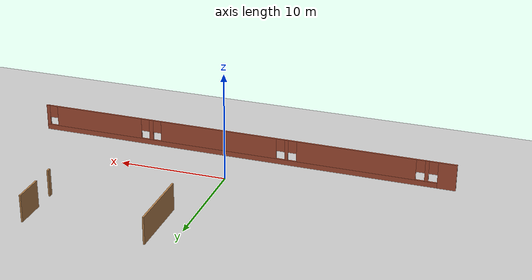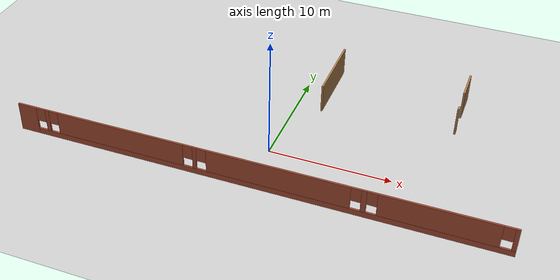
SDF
<sdf version="1.6">
 <world name="default">
  <model name="ground_plane">
   <static>1</static>
   <link name="link">
    <collision name="collision">
     <geometry><plane><normal>0 0 1</normal><size>100 100</size></plane></geometry>
     <surface>
      <contact><collide_bitmask>65535</collide_bitmask></contact>
      <friction><ode><mu>100</mu><mu2>50</mu2></ode></friction>
     </surface>
    </collision>
    <visual name="visual">
     <cast_shadows>0</cast_shadows>
     <geometry><plane><normal>0 0 1</normal><size>100 100</size></plane></geometry>
     <material>
      <script><uri>file://media/materials/scripts/gazebo.material</uri><name>Gazebo/Grey</name></script>
     </material>
    </visual>
   </link>
  </model>
  <model name="mybuilding">
   <link name="Wall_28">
    <pose>0.015532 -8.79244 0 0 -0 0</pose>
    <visual name="Wall_28_Visual_0">
     <pose>-19.0594 0 1.25 0 -0 0</pose>
     <geometry><box><size>1.65971 0.15 2.5</size></box></geometry>
     <material>
      <script><uri>file://media/materials/scripts/gazebo.material</uri><name>Gazebo/Bricks</name></script>
      <ambient>1 1 1 1</ambient>
      <shader type="pixel"/>
      <diffuse>1 1 1 1</diffuse>
      <specular>0.2 0.2 0.2 1</specular>
      <emissive>0 0 0 1</emissive>
     </material>
     <meta><layer>0</layer></meta>
    </visual>
    <visual name="Wall_28_Visual_1">
     <pose>0.829853 0 0.25 0 -0 0</pose>
     <geometry><box><size>38.1188 0.15 0.5</size></box></geometry>
     <material>
      <script><uri>file://media/materials/scripts/gazebo.material</uri><name>Gazebo/Bricks</name></script>
      <ambient>1 1 1 1</ambient>
      <shader type="pixel"/>
      <diffuse>1 1 1 1</diffuse>
      <specular>0.2 0.2 0.2 1</specular>
      <emissive>0 0 0 1</emissive>
     </material>
     <meta><layer>0</layer></meta>
    </visual>
    <visual name="Wall_28_Visual_2">
     <pose>-17.26 0 1.5 0 -0 0</pose>
     <geometry><box><size>0.339006 0.15 2</size></box></geometry>
     <material>
      <script><uri>file://media/materials/scripts/gazebo.material</uri><name>Gazebo/Bricks</name></script>
      <ambient>1 1 1 1</ambient>
      <shader type="pixel"/>
      <diffuse>1 1 1 1</diffuse>
      <specular>0.2 0.2 0.2 1</specular>
      <emissive>0 0 0 1</emissive>
     </material>
     <meta><layer>0</layer></meta>
    </visual>
    <visual name="Wall_28_Visual_3">
     <pose>-10.8105 0 1.5 0 -0 0</pose>
     <geometry><box><size>10.96 0.15 2</size></box></geometry>
     <material>
      <script><uri>file://media/materials/scripts/gazebo.material</uri><name>Gazebo/Bricks</name></script>
      <ambient>1 1 1 1</ambient>
      <shader type="pixel"/>
      <diffuse>1 1 1 1</diffuse>
      <specular>0.2 0.2 0.2 1</specular>
      <emissive>0 0 0 1</emissive>
     </material>
     <meta><layer>0</layer></meta>
    </visual>
    <visual name="Wall_28_Visual_4">
     <pose>-4.37053 0 1.5 0 -0 0</pose>
     <geometry><box><size>0.32 0.15 2</size></box></geometry>
     <material>
      <script><uri>file://media/materials/scripts/gazebo.material</uri><name>Gazebo/Bricks</name></script>
      <ambient>1 1 1 1</ambient>
      <shader type="pixel"/>
      <diffuse>1 1 1 1</diffuse>
      <specular>0.2 0.2 0.2 1</specular>
      <emissive>0 0 0 1</emissive>
     </material>
     <meta><layer>0</layer></meta>
    </visual>
    <visual name="Wall_28_Visual_5">
     <pose>2.26947 0 1.5 0 -0 0</pose>
     <geometry><box><size>11.36 0.15 2</size></box></geometry>
     <material>
      <script><uri>file://media/materials/scripts/gazebo.material</uri><name>Gazebo/Bricks</name></script>
      <ambient>1 1 1 1</ambient>
      <shader type="pixel"/>
      <diffuse>1 1 1 1</diffuse>
      <specular>0.2 0.2 0.2 1</specular>
      <emissive>0 0 0 1</emissive>
     </material>
     <meta><layer>0</layer></meta>
    </visual>
    <visual name="Wall_28_Visual_6">
     <pose>8.94947 0 1.5 0 -0 0</pose>
     <geometry><box><size>0.4 0.15 2</size></box></geometry>
     <material>
      <script><uri>file://media/materials/scripts/gazebo.material</uri><name>Gazebo/Bricks</name></script>
      <ambient>1 1 1 1</ambient>
      <shader type="pixel"/>
      <diffuse>1 1 1 1</diffuse>
      <specular>0.2 0.2 0.2 1</specular>
      <emissive>0 0 0 1</emissive>
     </material>
     <meta><layer>0</layer></meta>
    </visual>
    <visual name="Wall_28_Visual_7">
     <pose>14.3495 0 1.5 0 -0 0</pose>
     <geometry><box><size>8.8 0.15 2</size></box></geometry>
     <material>
      <script><uri>file://media/materials/scripts/gazebo.material</uri><name>Gazebo/Bricks</name></script>
      <ambient>1 1 1 1</ambient>
      <shader type="pixel"/>
      <diffuse>1 1 1 1</diffuse>
      <specular>0.2 0.2 0.2 1</specular>
      <emissive>0 0 0 1</emissive>
     </material>
     <meta><layer>0</layer></meta>
    </visual>
    <visual name="Wall_28_Visual_8">
     <pose>19.7194 0 1.5 0 -0 0</pose>
     <geometry><box><size>0.339765 0.15 2</size></box></geometry>
     <material>
      <script><uri>file://media/materials/scripts/gazebo.material</uri><name>Gazebo/Bricks</name></script>
      <ambient>1 1 1 1</ambient>
      <shader type="pixel"/>
      <diffuse>1 1 1 1</diffuse>
      <specular>0.2 0.2 0.2 1</specular>
      <emissive>0 0 0 1</emissive>
     </material>
     <meta><layer>0</layer></meta>
    </visual>
    <visual name="Wall_28_Visual_9">
     <pose>-17.8295 0 1.9 0 -0 0</pose>
     <geometry><box><size>0.8 0.15 1.2</size></box></geometry>
     <material>
      <script><uri>file://media/materials/scripts/gazebo.material</uri><name>Gazebo/Bricks</name></script>
      <ambient>1 1 1 1</ambient>
      <shader type="pixel"/>
      <diffuse>1 1 1 1</diffuse>
      <specular>0.2 0.2 0.2 1</specular>
      <emissive>0 0 0 1</emissive>
     </material>
     <meta><layer>0</layer></meta>
    </visual>
    <visual name="Wall_28_Visual_10">
     <pose>-16.6905 0 1.9 0 -0 0</pose>
     <geometry><box><size>0.8 0.15 1.2</size></box></geometry>
     <material>
      <script><uri>file://media/materials/scripts/gazebo.material</uri><name>Gazebo/Bricks</name></script>
      <ambient>1 1 1 1</ambient>
      <shader type="pixel"/>
      <diffuse>1 1 1 1</diffuse>
      <specular>0.2 0.2 0.2 1</specular>
      <emissive>0 0 0 1</emissive>
     </material>
     <meta><layer>0</layer></meta>
    </visual>
    <visual name="Wall_28_Visual_11">
     <pose>-4.93053 0 1.9 0 -0 0</pose>
     <geometry><box><size>0.8 0.15 1.2</size></box></geometry>
     <material>
      <script><uri>file://media/materials/scripts/gazebo.material</uri><name>Gazebo/Bricks</name></script>
      <ambient>1 1 1 1</ambient>
      <shader type="pixel"/>
      <diffuse>1 1 1 1</diffuse>
      <specular>0.2 0.2 0.2 1</specular>
      <emissive>0 0 0 1</emissive>
     </material>
     <meta><layer>0</layer></meta>
    </visual>
    <visual name="Wall_28_Visual_12">
     <pose>-3.81053 0 1.9 0 -0 0</pose>
     <geometry><box><size>0.8 0.15 1.2</size></box></geometry>
     <material>
      <script><uri>file://media/materials/scripts/gazebo.material</uri><name>Gazebo/Bricks</name></script>
      <ambient>1 1 1 1</ambient>
      <shader type="pixel"/>
      <diffuse>1 1 1 1</diffuse>
      <specular>0.2 0.2 0.2 1</specular>
      <emissive>0 0 0 1</emissive>
     </material>
     <meta><layer>0</layer></meta>
    </visual>
    <visual name="Wall_28_Visual_13">
     <pose>8.34947 0 1.9 0 -0 0</pose>
     <geometry><box><size>0.8 0.15 1.2</size></box></geometry>
     <material>
      <script><uri>file://media/materials/scripts/gazebo.material</uri><name>Gazebo/Bricks</name></script>
      <ambient>1 1 1 1</ambient>
      <shader type="pixel"/>
      <diffuse>1 1 1 1</diffuse>
      <specular>0.2 0.2 0.2 1</specular>
      <emissive>0 0 0 1</emissive>
     </material>
     <meta><layer>0</layer></meta>
    </visual>
    <visual name="Wall_28_Visual_14">
     <pose>9.54947 0 1.9 0 -0 0</pose>
     <geometry><box><size>0.8 0.15 1.2</size></box></geometry>
     <material>
      <script><uri>file://media/materials/scripts/gazebo.material</uri><name>Gazebo/Bricks</name></script>
      <ambient>1 1 1 1</ambient>
      <shader type="pixel"/>
      <diffuse>1 1 1 1</diffuse>
      <specular>0.2 0.2 0.2 1</specular>
      <emissive>0 0 0 1</emissive>
     </material>
     <meta><layer>0</layer></meta>
    </visual>
    <visual name="Wall_28_Visual_15">
     <pose>19.1495 0 1.9 0 -0 0</pose>
     <geometry><box><size>0.8 0.15 1.2</size></box></geometry>
     <material>
      <script><uri>file://media/materials/scripts/gazebo.material</uri><name>Gazebo/Bricks</name></script>
      <ambient>1 1 1 1</ambient>
      <shader type="pixel"/>
      <diffuse>1 1 1 1</diffuse>
      <specular>0.2 0.2 0.2 1</specular>
      <emissive>0 0 0 1</emissive>
     </material>
     <meta><layer>0</layer></meta>
    </visual>
    <collision name="Wall_28_Collision_0">
     <pose>-19.0594 0 1.25 0 -0 0</pose>
     <geometry><box><size>1.65971 0.15 2.5</size></box></geometry>
     <surface>
      <friction>
       <ode><mu>1</mu><mu2>1</mu2><fdir1>0 0 0</fdir1><slip1>0</slip1><slip2>0</slip2></ode>
       <torsional>
        <coefficient>1</coefficient>
        <patch_radius>0</patch_radius>
        <surface_radius>0</surface_radius>
        <use_patch_radius>1</use_patch_radius>
        <ode><slip>0</slip></ode>
       </torsional>
      </friction>
      <bounce><restitution_coefficient>0</restitution_coefficient><threshold>1e+06</threshold></bounce>
      <contact>
       <collide_without_contact>0</collide_without_contact>
       <collide_without_contact_bitmask>1</collide_without_contact_bitmask>
       <collide_bitmask>1</collide_bitmask>
       <ode>
        <soft_cfm>0</soft_cfm>
        <soft_erp>0.2</soft_erp>
        <kp>1e+13</kp>
        <kd>1</kd>
        <max_vel>0.01</max_vel>
        <min_depth>0</min_depth>
       </ode>
       <bullet>
        <split_impulse>1</split_impulse>
        <split_impulse_penetration_threshold>-0.01</split_impulse_penetration_threshold>
        <soft_cfm>0</soft_cfm>
        <soft_erp>0.2</soft_erp>
        <kp>1e+13</kp>
        <kd>1</kd>
       </bullet>
      </contact>
     </surface>
    </collision>
    <collision name="Wall_28_Collision_1">
     <pose>0.829853 0 0.25 0 -0 0</pose>
     <geometry><box><size>38.1188 0.15 0.5</size></box></geometry>
     <surface>
      <friction>
       <ode><mu>1</mu><mu2>1</mu2><fdir1>0 0 0</fdir1><slip1>0</slip1><slip2>0</slip2></ode>
       <torsional>
        <coefficient>1</coefficient>
        <patch_radius>0</patch_radius>
        <surface_radius>0</surface_radius>
        <use_patch_radius>1</use_patch_radius>
        <ode><slip>0</slip></ode>
       </torsional>
      </friction>
      <bounce><restitution_coefficient>0</restitution_coefficient><threshold>1e+06</threshold></bounce>
      <contact>
       <collide_without_contact>0</collide_without_contact>
       <collide_without_contact_bitmask>1</collide_without_contact_bitmask>
       <collide_bitmask>1</collide_bitmask>
       <ode>
        <soft_cfm>0</soft_cfm>
        <soft_erp>0.2</soft_erp>
        <kp>1e+13</kp>
        <kd>1</kd>
        <max_vel>0.01</max_vel>
        <min_depth>0</min_depth>
       </ode>
       <bullet>
        <split_impulse>1</split_impulse>
        <split_impulse_penetration_threshold>-0.01</split_impulse_penetration_threshold>
        <soft_cfm>0</soft_cfm>
        <soft_erp>0.2</soft_erp>
        <kp>1e+13</kp>
        <kd>1</kd>
       </bullet>
      </contact>
     </surface>
    </collision>
    <collision name="Wall_28_Collision_2">
     <pose>-17.26 0 1.5 0 -0 0</pose>
     <geometry><box><size>0.339006 0.15 2</size></box></geometry>
     <surface>
      <friction>
       <ode><mu>1</mu><mu2>1</mu2><fdir1>0 0 0</fdir1><slip1>0</slip1><slip2>0</slip2></ode>
       <torsional>
        <coefficient>1</coefficient>
        <patch_radius>0</patch_radius>
        <surface_radius>0</surface_radius>
        <use_patch_radius>1</use_patch_radius>
        <ode><slip>0</slip></ode>
       </torsional>
      </friction>
      <bounce><restitution_coefficient>0</restitution_coefficient><threshold>1e+06</threshold></bounce>
      <contact>
       <collide_without_contact>0</collide_without_contact>
       <collide_without_contact_bitmask>1</collide_without_contact_bitmask>
       <collide_bitmask>1</collide_bitmask>
       <ode>
        <soft_cfm>0</soft_cfm>
        <soft_erp>0.2</soft_erp>
        <kp>1e+13</kp>
        <kd>1</kd>
        <max_vel>0.01</max_vel>
        <min_depth>0</min_depth>
       </ode>
       <bullet>
        <split_impulse>1</split_impulse>
        <split_impulse_penetration_threshold>-0.01</split_impulse_penetration_threshold>
        <soft_cfm>0</soft_cfm>
        <soft_erp>0.2</soft_erp>
        <kp>1e+13</kp>
        <kd>1</kd>
       </bullet>
      </contact>
     </surface>
    </collision>
    <collision name="Wall_28_Collision_3">
     <pose>-10.8105 0 1.5 0 -0 0</pose>
     <geometry><box><size>10.96 0.15 2</size></box></geometry>
     <surface>
      <friction>
       <ode><mu>1</mu><mu2>1</mu2><fdir1>0 0 0</fdir1><slip1>0</slip1><slip2>0</slip2></ode>
       <torsional>
        <coefficient>1</coefficient>
        <patch_radius>0</patch_radius>
        <surface_radius>0</surface_radius>
        <use_patch_radius>1</use_patch_radius>
        <ode><slip>0</slip></ode>
       </torsional>
      </friction>
      <bounce><restitution_coefficient>0</restitution_coefficient><threshold>1e+06</threshold></bounce>
      <contact>
       <collide_without_contact>0</collide_without_contact>
       <collide_without_contact_bitmask>1</collide_without_contact_bitmask>
       <collide_bitmask>1</collide_bitmask>
       <ode>
        <soft_cfm>0</soft_cfm>
        <soft_erp>0.2</soft_erp>
        <kp>1e+13</kp>
        <kd>1</kd>
        <max_vel>0.01</max_vel>
        <min_depth>0</min_depth>
       </ode>
       <bullet>
        <split_impulse>1</split_impulse>
        <split_impulse_penetration_threshold>-0.01</split_impulse_penetration_threshold>
        <soft_cfm>0</soft_cfm>
        <soft_erp>0.2</soft_erp>
        <kp>1e+13</kp>
        <kd>1</kd>
       </bullet>
      </contact>
     </surface>
    </collision>
    <collision name="Wall_28_Collision_4">
     <pose>-4.37053 0 1.5 0 -0 0</pose>
     <geometry><box><size>0.32 0.15 2</size></box></geometry>
     <surface>
      <friction>
       <ode><mu>1</mu><mu2>1</mu2><fdir1>0 0 0</fdir1><slip1>0</slip1><slip2>0</slip2></ode>
       <torsional>
        <coefficient>1</coefficient>
        <patch_radius>0</patch_radius>
        <surface_radius>0</surface_radius>
        <use_patch_radius>1</use_patch_radius>
        <ode><slip>0</slip></ode>
       </torsional>
      </friction>
      <bounce><restitution_coefficient>0</restitution_coefficient><threshold>1e+06</threshold></bounce>
      <contact>
       <collide_without_contact>0</collide_without_contact>
       <collide_without_contact_bitmask>1</collide_without_contact_bitmask>
       <collide_bitmask>1</collide_bitmask>
       <ode>
        <soft_cfm>0</soft_cfm>
        <soft_erp>0.2</soft_erp>
        <kp>1e+13</kp>
        <kd>1</kd>
        <max_vel>0.01</max_vel>
        <min_depth>0</min_depth>
       </ode>
       <bullet>
        <split_impulse>1</split_impulse>
        <split_impulse_penetration_threshold>-0.01</split_impulse_penetration_threshold>
        <soft_cfm>0</soft_cfm>
        <soft_erp>0.2</soft_erp>
        <kp>1e+13</kp>
        <kd>1</kd>
       </bullet>
      </contact>
     </surface>
    </collision>
    <collision name="Wall_28_Collision_5">
     <pose>2.26947 0 1.5 0 -0 0</pose>
     <geometry><box><size>11.36 0.15 2</size></box></geometry>
     <surface>
      <friction>
       <ode><mu>1</mu><mu2>1</mu2><fdir1>0 0 0</fdir1><slip1>0</slip1><slip2>0</slip2></ode>
       <torsional>
        <coefficient>1</coefficient>
        <patch_radius>0</patch_radius>
        <surface_radius>0</surface_radius>
        <use_patch_radius>1</use_patch_radius>
        <ode><slip>0</slip></ode>
       </torsional>
      </friction>
      <bounce><restitution_coefficient>0</restitution_coefficient><threshold>1e+06</threshold></bounce>
      <contact>
       <collide_without_contact>0</collide_without_contact>
       <collide_without_contact_bitmask>1</collide_without_contact_bitmask>
       <collide_bitmask>1</collide_bitmask>
       <ode>
        <soft_cfm>0</soft_cfm>
        <soft_erp>0.2</soft_erp>
        <kp>1e+13</kp>
        <kd>1</kd>
        <max_vel>0.01</max_vel>
        <min_depth>0</min_depth>
       </ode>
       <bullet>
        <split_impulse>1</split_impulse>
        <split_impulse_penetration_threshold>-0.01</split_impulse_penetration_threshold>
        <soft_cfm>0</soft_cfm>
        <soft_erp>0.2</soft_erp>
        <kp>1e+13</kp>
        <kd>1</kd>
       </bullet>
      </contact>
     </surface>
    </collision>
    <collision name="Wall_28_Collision_6">
     <pose>8.94947 0 1.5 0 -0 0</pose>
     <geometry><box><size>0.4 0.15 2</size></box></geometry>
     <surface>
      <friction>
       <ode><mu>1</mu><mu2>1</mu2><fdir1>0 0 0</fdir1><slip1>0</slip1><slip2>0</slip2></ode>
       <torsional>
        <coefficient>1</coefficient>
        <patch_radius>0</patch_radius>
        <surface_radius>0</surface_radius>
        <use_patch_radius>1</use_patch_radius>
        <ode><slip>0</slip></ode>
       </torsional>
      </friction>
      <bounce><restitution_coefficient>0</restitution_coefficient><threshold>1e+06</threshold></bounce>
      <contact>
       <collide_without_contact>0</collide_without_contact>
       <collide_without_contact_bitmask>1</collide_without_contact_bitmask>
       <collide_bitmask>1</collide_bitmask>
       <ode>
        <soft_cfm>0</soft_cfm>
        <soft_erp>0.2</soft_erp>
        <kp>1e+13</kp>
        <kd>1</kd>
        <max_vel>0.01</max_vel>
        <min_depth>0</min_depth>
       </ode>
       <bullet>
        <split_impulse>1</split_impulse>
        <split_impulse_penetration_threshold>-0.01</split_impulse_penetration_threshold>
        <soft_cfm>0</soft_cfm>
        <soft_erp>0.2</soft_erp>
        <kp>1e+13</kp>
        <kd>1</kd>
       </bullet>
      </contact>
     </surface>
    </collision>
    <collision name="Wall_28_Collision_7">
     <pose>14.3495 0 1.5 0 -0 0</pose>
     <geometry><box><size>8.8 0.15 2</size></box></geometry>
     <surface>
      <friction>
       <ode><mu>1</mu><mu2>1</mu2><fdir1>0 0 0</fdir1><slip1>0</slip1><slip2>0</slip2></ode>
       <torsional>
        <coefficient>1</coefficient>
        <patch_radius>0</patch_radius>
        <surface_radius>0</surface_radius>
        <use_patch_radius>1</use_patch_radius>
        <ode><slip>0</slip></ode>
       </torsional>
      </friction>
      <bounce><restitution_coefficient>0</restitution_coefficient><threshold>1e+06</threshold></bounce>
      <contact>
       <collide_without_contact>0</collide_without_contact>
       <collide_without_contact_bitmask>1</collide_without_contact_bitmask>
       <collide_bitmask>1</collide_bitmask>
       <ode>
        <soft_cfm>0</soft_cfm>
        <soft_erp>0.2</soft_erp>
        <kp>1e+13</kp>
        <kd>1</kd>
        <max_vel>0.01</max_vel>
        <min_depth>0</min_depth>
       </ode>
       <bullet>
        <split_impulse>1</split_impulse>
        <split_impulse_penetration_threshold>-0.01</split_impulse_penetration_threshold>
        <soft_cfm>0</soft_cfm>
        <soft_erp>0.2</soft_erp>
        <kp>1e+13</kp>
        <kd>1</kd>
       </bullet>
      </contact>
     </surface>
    </collision>
    <collision name="Wall_28_Collision_8">
     <pose>19.7194 0 1.5 0 -0 0</pose>
     <geometry><box><size>0.339765 0.15 2</size></box></geometry>
     <surface>
      <friction>
       <ode><mu>1</mu><mu2>1</mu2><fdir1>0 0 0</fdir1><slip1>0</slip1><slip2>0</slip2></ode>
       <torsional>
        <coefficient>1</coefficient>
        <patch_radius>0</patch_radius>
        <surface_radius>0</surface_radius>
        <use_patch_radius>1</use_patch_radius>
        <ode><slip>0</slip></ode>
       </torsional>
      </friction>
      <bounce><restitution_coefficient>0</restitution_coefficient><threshold>1e+06</threshold></bounce>
      <contact>
       <collide_without_contact>0</collide_without_contact>
       <collide_without_contact_bitmask>1</collide_without_contact_bitmask>
       <collide_bitmask>1</collide_bitmask>
       <ode>
        <soft_cfm>0</soft_cfm>
        <soft_erp>0.2</soft_erp>
        <kp>1e+13</kp>
        <kd>1</kd>
        <max_vel>0.01</max_vel>
        <min_depth>0</min_depth>
       </ode>
       <bullet>
        <split_impulse>1</split_impulse>
        <split_impulse_penetration_threshold>-0.01</split_impulse_penetration_threshold>
        <soft_cfm>0</soft_cfm>
        <soft_erp>0.2</soft_erp>
        <kp>1e+13</kp>
        <kd>1</kd>
       </bullet>
      </contact>
     </surface>
    </collision>
    <collision name="Wall_28_Collision_9">
     <pose>-17.8295 0 1.9 0 -0 0</pose>
     <geometry><box><size>0.8 0.15 1.2</size></box></geometry>
     <surface>
      <friction>
       <ode><mu>1</mu><mu2>1</mu2><fdir1>0 0 0</fdir1><slip1>0</slip1><slip2>0</slip2></ode>
       <torsional>
        <coefficient>1</coefficient>
        <patch_radius>0</patch_radius>
        <surface_radius>0</surface_radius>
        <use_patch_radius>1</use_patch_radius>
        <ode><slip>0</slip></ode>
       </torsional>
      </friction>
      <bounce><restitution_coefficient>0</restitution_coefficient><threshold>1e+06</threshold></bounce>
      <contact>
       <collide_without_contact>0</collide_without_contact>
       <collide_without_contact_bitmask>1</collide_without_contact_bitmask>
       <collide_bitmask>1</collide_bitmask>
       <ode>
        <soft_cfm>0</soft_cfm>
        <soft_erp>0.2</soft_erp>
        <kp>1e+13</kp>
        <kd>1</kd>
        <max_vel>0.01</max_vel>
        <min_depth>0</min_depth>
       </ode>
       <bullet>
        <split_impulse>1</split_impulse>
        <split_impulse_penetration_threshold>-0.01</split_impulse_penetration_threshold>
        <soft_cfm>0</soft_cfm>
        <soft_erp>0.2</soft_erp>
        <kp>1e+13</kp>
        <kd>1</kd>
       </bullet>
      </contact>
     </surface>
    </collision>
    <collision name="Wall_28_Collision_11">
     <pose>-4.93053 0 1.9 0 -0 0</pose>
     <geometry><box><size>0.8 0.15 1.2</size></box></geometry>
     <surface>
      <friction>
       <ode><mu>1</mu><mu2>1</mu2><fdir1>0 0 0</fdir1><slip1>0</slip1><slip2>0</slip2></ode>
       <torsional>
        <coefficient>1</coefficient>
        <patch_radius>0</patch_radius>
        <surface_radius>0</surface_radius>
        <use_patch_radius>1</use_patch_radius>
        <ode><slip>0</slip></ode>
       </torsional>
      </friction>
      <bounce><restitution_coefficient>0</restitution_coefficient><threshold>1e+06</threshold></bounce>
      <contact>
       <collide_without_contact>0</collide_without_contact>
       <collide_without_contact_bitmask>1</collide_without_contact_bitmask>
       <collide_bitmask>1</collide_bitmask>
       <ode>
        <soft_cfm>0</soft_cfm>
        <soft_erp>0.2</soft_erp>
        <kp>1e+13</kp>
        <kd>1</kd>
        <max_vel>0.01</max_vel>
        <min_depth>0</min_depth>
       </ode>
       <bullet>
        <split_impulse>1</split_impulse>
        <split_impulse_penetration_threshold>-0.01</split_impulse_penetration_threshold>
        <soft_cfm>0</soft_cfm>
        <soft_erp>0.2</soft_erp>
        <kp>1e+13</kp>
        <kd>1</kd>
       </bullet>
      </contact>
     </surface>
    </collision>
    <collision name="Wall_28_Collision_10">
     <pose>-16.6905 0 1.9 0 -0 0</pose>
     <geometry><box><size>0.8 0.15 1.2</size></box></geometry>
     <surface>
      <friction>
       <ode><mu>1</mu><mu2>1</mu2><fdir1>0 0 0</fdir1><slip1>0</slip1><slip2>0</slip2></ode>
       <torsional>
        <coefficient>1</coefficient>
        <patch_radius>0</patch_radius>
        <surface_radius>0</surface_radius>
        <use_patch_radius>1</use_patch_radius>
        <ode><slip>0</slip></ode>
       </torsional>
      </friction>
      <bounce><restitution_coefficient>0</restitution_coefficient><threshold>1e+06</threshold></bounce>
      <contact>
       <collide_without_contact>0</collide_without_contact>
       <collide_without_contact_bitmask>1</collide_without_contact_bitmask>
       <collide_bitmask>1</collide_bitmask>
       <ode>
        <soft_cfm>0</soft_cfm>
        <soft_erp>0.2</soft_erp>
        <kp>1e+13</kp>
        <kd>1</kd>
        <max_vel>0.01</max_vel>
        <min_depth>0</min_depth>
       </ode>
       <bullet>
        <split_impulse>1</split_impulse>
        <split_impulse_penetration_threshold>-0.01</split_impulse_penetration_threshold>
        <soft_cfm>0</soft_cfm>
        <soft_erp>0.2</soft_erp>
        <kp>1e+13</kp>
        <kd>1</kd>
       </bullet>
      </contact>
     </surface>
    </collision>
    <collision name="Wall_28_Collision_12">
     <pose>-3.81053 0 1.9 0 -0 0</pose>
     <geometry><box><size>0.8 0.15 1.2</size></box></geometry>
     <surface>
      <friction>
       <ode><mu>1</mu><mu2>1</mu2><fdir1>0 0 0</fdir1><slip1>0</slip1><slip2>0</slip2></ode>
       <torsional>
        <coefficient>1</coefficient>
        <patch_radius>0</patch_radius>
        <surface_radius>0</surface_radius>
        <use_patch_radius>1</use_patch_radius>
        <ode><slip>0</slip></ode>
       </torsional>
      </friction>
      <bounce><restitution_coefficient>0</restitution_coefficient><threshold>1e+06</threshold></bounce>
      <contact>
       <collide_without_contact>0</collide_without_contact>
       <collide_without_contact_bitmask>1</collide_without_contact_bitmask>
       <collide_bitmask>1</collide_bitmask>
       <ode>
        <soft_cfm>0</soft_cfm>
        <soft_erp>0.2</soft_erp>
        <kp>1e+13</kp>
        <kd>1</kd>
        <max_vel>0.01</max_vel>
        <min_depth>0</min_depth>
       </ode>
       <bullet>
        <split_impulse>1</split_impulse>
        <split_impulse_penetration_threshold>-0.01</split_impulse_penetration_threshold>
        <soft_cfm>0</soft_cfm>
        <soft_erp>0.2</soft_erp>
        <kp>1e+13</kp>
        <kd>1</kd>
       </bullet>
      </contact>
     </surface>
    </collision>
    <collision name="Wall_28_Collision_14">
     <pose>9.54947 0 1.9 0 -0 0</pose>
     <geometry><box><size>0.8 0.15 1.2</size></box></geometry>
     <surface>
      <friction>
       <ode><mu>1</mu><mu2>1</mu2><fdir1>0 0 0</fdir1><slip1>0</slip1><slip2>0</slip2></ode>
       <torsional>
        <coefficient>1</coefficient>
        <patch_radius>0</patch_radius>
        <surface_radius>0</surface_radius>
        <use_patch_radius>1</use_patch_radius>
        <ode><slip>0</slip></ode>
       </torsional>
      </friction>
      <bounce><restitution_coefficient>0</restitution_coefficient><threshold>1e+06</threshold></bounce>
      <contact>
       <collide_without_contact>0</collide_without_contact>
       <collide_without_contact_bitmask>1</collide_without_contact_bitmask>
       <collide_bitmask>1</collide_bitmask>
       <ode>
        <soft_cfm>0</soft_cfm>
        <soft_erp>0.2</soft_erp>
        <kp>1e+13</kp>
        <kd>1</kd>
        <max_vel>0.01</max_vel>
        <min_depth>0</min_depth>
       </ode>
       <bullet>
        <split_impulse>1</split_impulse>
        <split_impulse_penetration_threshold>-0.01</split_impulse_penetration_threshold>
        <soft_cfm>0</soft_cfm>
        <soft_erp>0.2</soft_erp>
        <kp>1e+13</kp>
        <kd>1</kd>
       </bullet>
      </contact>
     </surface>
    </collision>
    <collision name="Wall_28_Collision_13">
     <pose>8.34947 0 1.9 0 -0 0</pose>
     <geometry><box><size>0.8 0.15 1.2</size></box></geometry>
     <surface>
      <friction>
       <ode><mu>1</mu><mu2>1</mu2><fdir1>0 0 0</fdir1><slip1>0</slip1><slip2>0</slip2></ode>
       <torsional>
        <coefficient>1</coefficient>
        <patch_radius>0</patch_radius>
        <surface_radius>0</surface_radius>
        <use_patch_radius>1</use_patch_radius>
        <ode><slip>0</slip></ode>
       </torsional>
      </friction>
      <bounce><restitution_coefficient>0</restitution_coefficient><threshold>1e+06</threshold></bounce>
      <contact>
       <collide_without_contact>0</collide_without_contact>
       <collide_without_contact_bitmask>1</collide_without_contact_bitmask>
       <collide_bitmask>1</collide_bitmask>
       <ode>
        <soft_cfm>0</soft_cfm>
        <soft_erp>0.2</soft_erp>
        <kp>1e+13</kp>
        <kd>1</kd>
        <max_vel>0.01</max_vel>
        <min_depth>0</min_depth>
       </ode>
       <bullet>
        <split_impulse>1</split_impulse>
        <split_impulse_penetration_threshold>-0.01</split_impulse_penetration_threshold>
        <soft_cfm>0</soft_cfm>
        <soft_erp>0.2</soft_erp>
        <kp>1e+13</kp>
        <kd>1</kd>
       </bullet>
      </contact>
     </surface>
    </collision>
    <collision name="Wall_28_Collision_15">
     <pose>19.1495 0 1.9 0 -0 0</pose>
     <geometry><box><size>0.8 0.15 1.2</size></box></geometry>
     <surface>
      <friction>
       <ode><mu>1</mu><mu2>1</mu2><fdir1>0 0 0</fdir1><slip1>0</slip1><slip2>0</slip2></ode>
       <torsional>
        <coefficient>1</coefficient>
        <patch_radius>0</patch_radius>
        <surface_radius>0</surface_radius>
        <use_patch_radius>1</use_patch_radius>
        <ode><slip>0</slip></ode>
       </torsional>
      </friction>
      <bounce><restitution_coefficient>0</restitution_coefficient><threshold>1e+06</threshold></bounce>
      <contact>
       <collide_without_contact>0</collide_without_contact>
       <collide_without_contact_bitmask>1</collide_without_contact_bitmask>
       <collide_bitmask>1</collide_bitmask>
       <ode>
        <soft_cfm>0</soft_cfm>
        <soft_erp>0.2</soft_erp>
        <kp>1e+13</kp>
        <kd>1</kd>
        <max_vel>0.01</max_vel>
        <min_depth>0</min_depth>
       </ode>
       <bullet>
        <split_impulse>1</split_impulse>
        <split_impulse_penetration_threshold>-0.01</split_impulse_penetration_threshold>
        <soft_cfm>0</soft_cfm>
        <soft_erp>0.2</soft_erp>
        <kp>1e+13</kp>
        <kd>1</kd>
       </bullet>
      </contact>
     </surface>
    </collision>
   </link>
   <link name="Wall_56">
    <pose>13.2051 6.10143 0 0 0 -1.5708</pose>
    <visual name="Wall_56_Visual_0">
     <pose>-1.20641 0 1.25 0 -0 0</pose>
     <geometry><box><size>2.83717 0.15 2.5</size></box></geometry>
     <material>
      <script><uri>file://media/materials/scripts/gazebo.material</uri><name>Gazebo/Wood</name></script>
      <ambient>1 1 1 1</ambient>
      <shader type="pixel"/>
      <diffuse>1 1 1 1</diffuse>
      <specular>0.2 0.2 0.2 1</specular>
      <emissive>0 0 0 1</emissive>
     </material>
     <meta><layer>0</layer></meta>
    </visual>
    <visual name="Wall_56_Visual_1">
     <pose>2.41859 0 1.25 0 -0 0</pose>
     <geometry><box><size>0.412826 0.15 2.5</size></box></geometry>
     <material>
      <script><uri>file://media/materials/scripts/gazebo.material</uri><name>Gazebo/Wood</name></script>
      <ambient>1 1 1 1</ambient>
      <shader type="pixel"/>
      <diffuse>1 1 1 1</diffuse>
      <specular>0.2 0.2 0.2 1</specular>
      <emissive>0 0 0 1</emissive>
     </material>
     <meta><layer>0</layer></meta>
    </visual>
    <collision name="Wall_56_Collision_1">
     <pose>2.41859 0 1.25 0 -0 0</pose>
     <geometry><box><size>0.412826 0.15 2.5</size></box></geometry>
     <surface>
      <friction>
       <ode><mu>1</mu><mu2>1</mu2><fdir1>0 0 0</fdir1><slip1>0</slip1><slip2>0</slip2></ode>
       <torsional>
        <coefficient>1</coefficient>
        <patch_radius>0</patch_radius>
        <surface_radius>0</surface_radius>
        <use_patch_radius>1</use_patch_radius>
        <ode><slip>0</slip></ode>
       </torsional>
      </friction>
      <bounce><restitution_coefficient>0</restitution_coefficient><threshold>1e+06</threshold></bounce>
      <contact>
       <collide_without_contact>0</collide_without_contact>
       <collide_without_contact_bitmask>1</collide_without_contact_bitmask>
       <collide_bitmask>1</collide_bitmask>
       <ode>
        <soft_cfm>0</soft_cfm>
        <soft_erp>0.2</soft_erp>
        <kp>1e+13</kp>
        <kd>1</kd>
        <max_vel>0.01</max_vel>
        <min_depth>0</min_depth>
       </ode>
       <bullet>
        <split_impulse>1</split_impulse>
        <split_impulse_penetration_threshold>-0.01</split_impulse_penetration_threshold>
        <soft_cfm>0</soft_cfm>
        <soft_erp>0.2</soft_erp>
        <kp>1e+13</kp>
        <kd>1</kd>
       </bullet>
      </contact>
     </surface>
    </collision>
    <collision name="Wall_56_Collision_0">
     <pose>-1.20641 0 1.25 0 -0 0</pose>
     <geometry><box><size>2.83717 0.15 2.5</size></box></geometry>
     <surface>
      <friction>
       <ode><mu>1</mu><mu2>1</mu2><fdir1>0 0 0</fdir1><slip1>0</slip1><slip2>0</slip2></ode>
       <torsional>
        <coefficient>1</coefficient>
        <patch_radius>0</patch_radius>
        <surface_radius>0</surface_radius>
        <use_patch_radius>1</use_patch_radius>
        <ode><slip>0</slip></ode>
       </torsional>
      </friction>
      <bounce><restitution_coefficient>0</restitution_coefficient><threshold>1e+06</threshold></bounce>
      <contact>
       <collide_without_contact>0</collide_without_contact>
       <collide_without_contact_bitmask>1</collide_without_contact_bitmask>
       <collide_bitmask>1</collide_bitmask>
       <ode>
        <soft_cfm>0</soft_cfm>
        <soft_erp>0.2</soft_erp>
        <kp>1e+13</kp>
        <kd>1</kd>
        <max_vel>0.01</max_vel>
        <min_depth>0</min_depth>
       </ode>
       <bullet>
        <split_impulse>1</split_impulse>
        <split_impulse_penetration_threshold>-0.01</split_impulse_penetration_threshold>
        <soft_cfm>0</soft_cfm>
        <soft_erp>0.2</soft_erp>
        <kp>1e+13</kp>
        <kd>1</kd>
       </bullet>
      </contact>
     </surface>
    </collision>
   </link>
   <link name="Wall_68">
    <pose>2.13669 5.66171 0 0 0 -1.5708</pose>
    <visual name="Wall_68_Visual">
     <pose>0 0 1.25 0 -0 0</pose>
     <geometry><box><size>6.25 0.15 2.5</size></box></geometry>
     <material>
      <script><uri>file://media/materials/scripts/gazebo.material</uri><name>Gazebo/Wood</name></script>
      <ambient>1 1 1 1</ambient>
      <shader type="pixel"/>
      <diffuse>1 1 1 1</diffuse>
      <specular>0.2 0.2 0.2 1</specular>
      <emissive>0 0 0 1</emissive>
     </material>
     <meta><layer>0</layer></meta>
    </visual>
    <collision name="Wall_68_Collision">
     <pose>0 0 1.25 0 -0 0</pose>
     <geometry><box><size>6.25 0.15 2.5</size></box></geometry>
     <surface>
      <friction>
       <ode><mu>1</mu><mu2>1</mu2><fdir1>0 0 0</fdir1><slip1>0</slip1><slip2>0</slip2></ode>
       <torsional>
        <coefficient>1</coefficient>
        <patch_radius>0</patch_radius>
        <surface_radius>0</surface_radius>
        <use_patch_radius>1</use_patch_radius>
        <ode><slip>0</slip></ode>
       </torsional>
      </friction>
      <bounce><restitution_coefficient>0</restitution_coefficient><threshold>1e+06</threshold></bounce>
      <contact>
       <collide_without_contact>0</collide_without_contact>
       <collide_without_contact_bitmask>1</collide_without_contact_bitmask>
       <collide_bitmask>1</collide_bitmask>
       <ode>
        <soft_cfm>0</soft_cfm>
        <soft_erp>0.2</soft_erp>
        <kp>1e+13</kp>
        <kd>1</kd>
        <max_vel>0.01</max_vel>
        <min_depth>0</min_depth>
       </ode>
       <bullet>
        <split_impulse>1</split_impulse>
        <split_impulse_penetration_threshold>-0.01</split_impulse_penetration_threshold>
        <soft_cfm>0</soft_cfm>
        <soft_erp>0.2</soft_erp>
        <kp>1e+13</kp>
        <kd>1</kd>
       </bullet>
      </contact>
     </surface>
    </collision>
   </link>
   <static>1</static>
   <pose>0.027091 4.22979 0 0 -0 0</pose>
  </model>
 </world>
</sdf>
